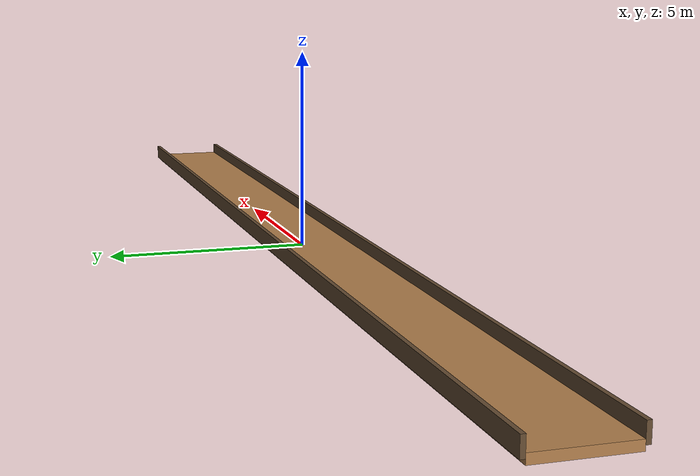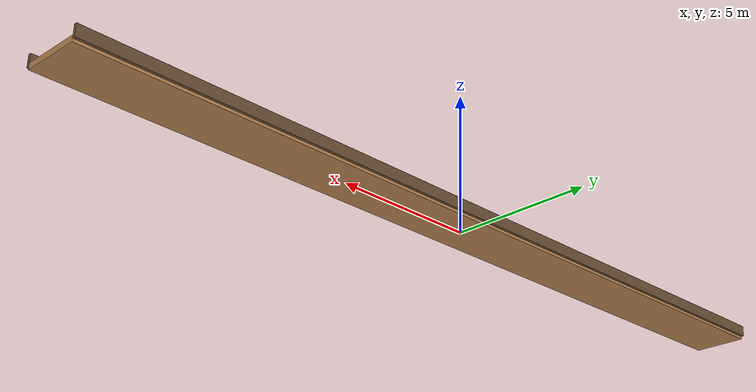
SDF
<?xml version="1.0" ?>
<sdf version="1.7">
  <model name="dock">
    <static>true</static>

    <link name="dock_link">

      <!-- MAIN PLATFORM -->
      <collision name="platform_collision">
        <pose>0 0 0.1 0 0 0</pose>
        <geometry>
          <box>
            <size>30 2 0.2</size>
          </box>
        </geometry>
      </collision>

      <visual name="platform_visual">
        <pose>0 0 0.1 0 0 0</pose>
        <geometry>
          <box>
            <size>30 2 0.2</size>
          </box>
        </geometry>
        <material>
            <script>
                <uri>model://dock/materials/scripts</uri>
                <uri>model://dock/materials/textures</uri>
                <name>Dock/Wood</name>
            </script>
        </material>
      </visual>

      <!-- LEFT EDGE -->
      <collision name="left_edge_collision">
        <pose>0 -1.05 0.3 0 0 0</pose>
        <geometry>
          <box>
            <size>30 0.1 0.4</size>
          </box>
        </geometry>
      </collision>

      <visual name="left_edge_visual">
        <pose>0 -1.05 0.3 0 0 0</pose>
        <geometry>
          <box>
            <size>30 0.1 0.4</size>
          </box>
        </geometry>
        <material>
          <ambient>0.3 0.2 0.1 1</ambient>
          <diffuse>0.4 0.3 0.2 1</diffuse>
        </material>
      </visual>

      <!-- RIGHT EDGE -->
      <collision name="right_edge_collision">
        <pose>0 1.05 0.3 0 0 0</pose>
        <geometry>
          <box>
            <size>30 0.1 0.4</size>
          </box>
        </geometry>
      </collision>

      <visual name="right_edge_visual">
        <pose>0 1.05 0.3 0 0 0</pose>
        <geometry>
          <box>
            <size>30 0.1 0.4</size>
          </box>
        </geometry>
        <material>
          <ambient>0.3 0.2 0.1 1</ambient>
          <diffuse>0.4 0.3 0.2 1</diffuse>
        </material>
      </visual>

    </link>
  </model>
</sdf>
